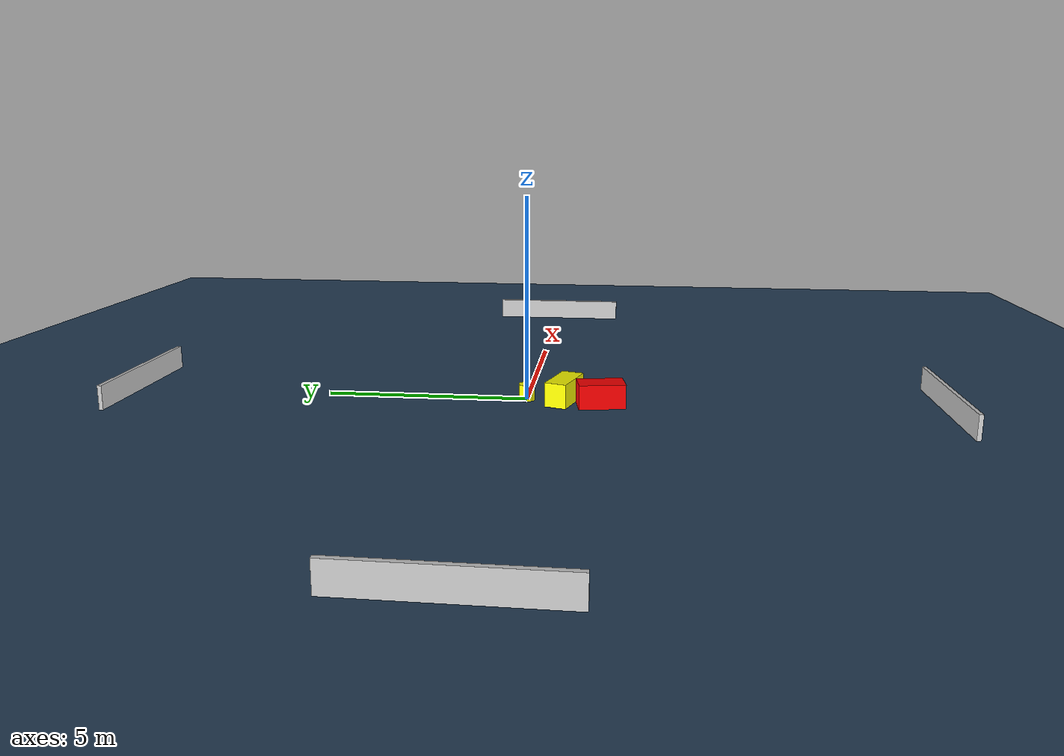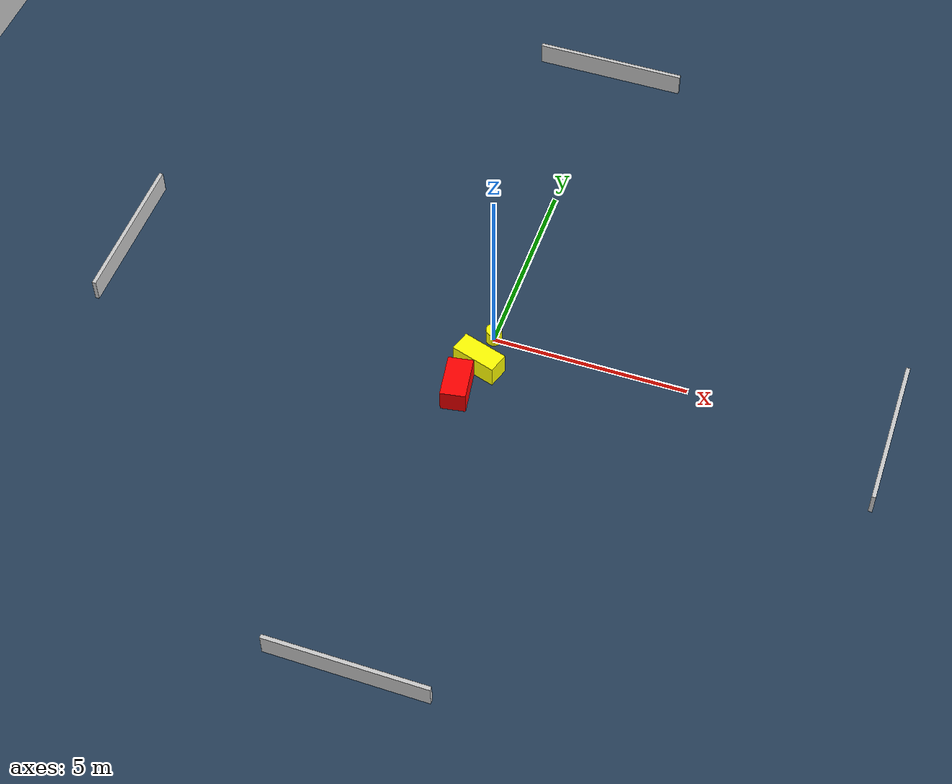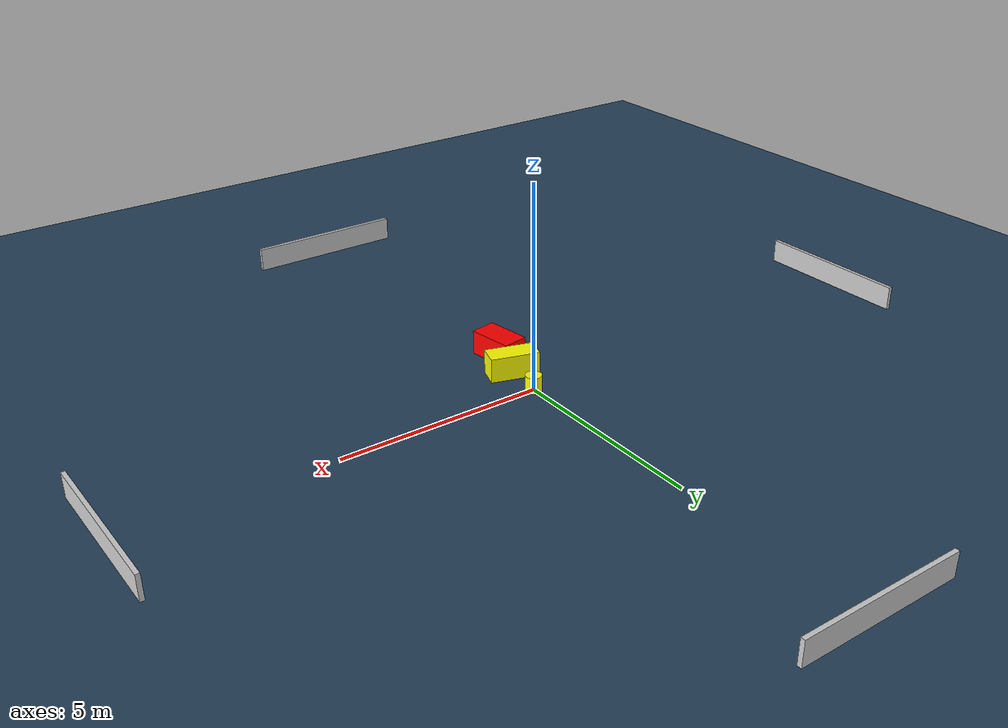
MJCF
<?xml version="1.0" ?>
<mujoco model="generated_environment">
  <option timestep="0.01" integrator="RK4" cone="elliptic"/>
  <default>
    <geom density="1"/>
  </default>
  <asset>
    <texture builtin="gradient" height="3072" name="skybox" rgb1="0.3 0.5 0.7" rgb2="0 0 0" type="skybox" width="512"/>
    <texture builtin="checker" height="300" name="groundplane" rgb1="0.2 0.3 0.4" rgb2="0.1 0.2 0.3" type="2d" width="300"/>
    <material name="groundplane" reflectance="0.2" texrepeat="5 5" texture="groundplane"/>
  </asset>
  <worldbody>
    <light dir="0 0 -1" directional="true" pos="0 0 1.5"/>
    <geom condim="3" friction="0.5 0.005 0.001" material="groundplane" name="floor" pos="0 0 0" size="0 0 0.05" type="plane"/>
    <body name="walls">
      <geom name="wall_1" condim="4" pos="-10.0 0.0 0.3" rgba="0.800000011920929 0.800000011920929 0.800000011920929 1.0" size="0.05 2.0 0.3" type="box"/>
      <geom name="wall_2" condim="4" pos="10.0 0.0 0.3" rgba="0.800000011920929 0.800000011920929 0.800000011920929 1.0" size="0.05 2.0 0.3" type="box"/>
      <geom name="wall_3" condim="4" pos="0.0 -10.0 0.3" rgba="0.800000011920929 0.800000011920929 0.800000011920929 1.0" size="2.0 0.05 0.3" type="box"/>
      <geom name="wall_4" condim="4" pos="0.0 10.0 0.3" rgba="0.800000011920929 0.800000011920929 0.800000011920929 1.0" size="2.0 0.05 0.3" type="box"/>
    </body>
    <body name="robot">
      <joint name="joint_x" type="slide" pos="0 0 0" axis="1 0 0"/>
      <joint name="joint_y" type="slide" pos="0 0 0" axis="0 1 0"/>
      <geom name="robot" type="cylinder" pos="0.0 0.0 0.2" size="0.2 0.2 0.0" mass="5.0" friction="1.0 0.005 0.0001" condim="4" rgba="1.0 1.0 0.0 1.0"/>
    </body>
    <body name="obstacle_1_movable">
      <geom name="obstacle_1_movable" condim="4" pos="-0.0675454417767591 -0.927770744125886 0.3" euler="0 0 252.60070471610243" friction="0.0 0.005 0.001" rgba="1.0 1.0 0.0 1.0" size="0.2717943982696963 0.595329928265659 0.3" type="box" mass="0.1"/>
      <joint type="free"/>
    </body>
    <body name="obstacle_2_static">
      <geom name="obstacle_2_static" condim="4" pos="-0.3282963840752115 -1.8300694781198332 0.3" euler="0 0 279.0954790801352" friction="0.0 0.005 0.001" rgba="1.0 0.0 0.0 1.0" size="0.5667712634879332 0.3187469847924165 0.3" type="box"/>
    </body>
  </worldbody>
  <actuator>
    <motor name="actuator_x" joint="joint_x" gear="1" ctrlrange="-1 1"/>
    <motor name="actuator_y" joint="joint_y" gear="1" ctrlrange="-1 1"/>
  </actuator>
</mujoco>
